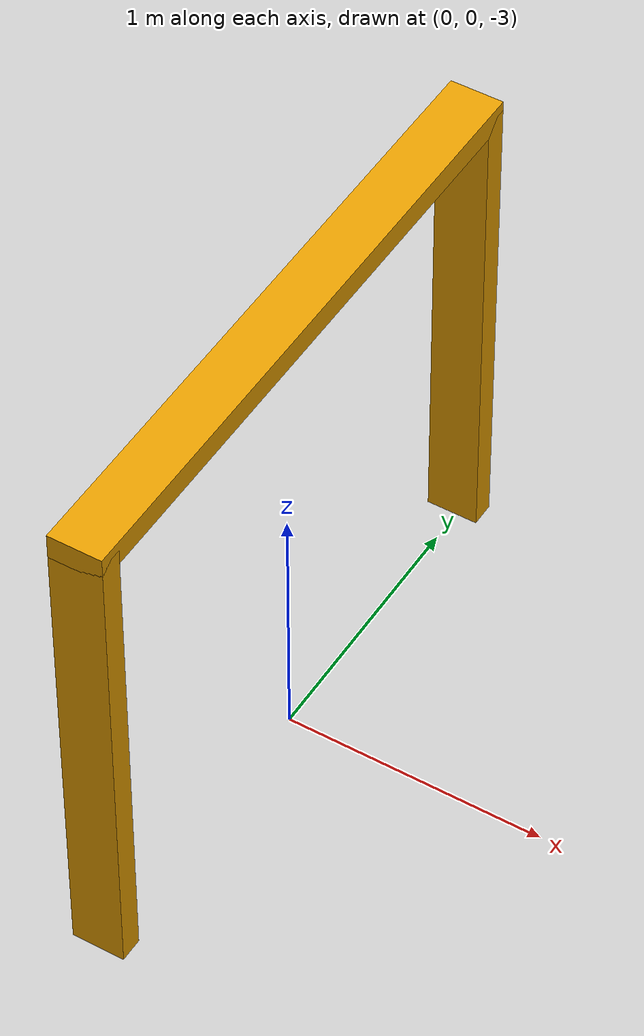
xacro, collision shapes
<?xml version="1.0"?>
<robot name="gate" xmlns:xacro="http://www.ros.org/wiki/xacro">

  <!-- Gate Dimensions -->
  <!-- Width: 2m between post centers (Y scale 0.4) -->
  <!-- Depth: Top crossbar top surface placed 1m below water surface (z=0) -->
  <xacro:property name="scale_x" value="1.0" />
  <xacro:property name="scale_y" value="0.46" />
  <xacro:property name="scale_z" value="0.48" />

  <xacro:property name="orig_v_post_x" value="0.2" />
  <xacro:property name="orig_v_post_y" value="0.2" />
  <xacro:property name="orig_v_post_z" value="4.0" />

  <xacro:property name="orig_h_post_x" value="0.2" />
  <xacro:property name="orig_h_post_y" value="5.2" />
  <xacro:property name="orig_h_post_z" value="0.2" />

  <link name="link">
    <inertial>
      <origin xyz="0.0 0.0 0.0" rpy="0.0 0.0 0.0" />
      <mass value="5000.0" />
      <inertia ixx="1.0" ixy="0.0" ixz="0.0" iyy="1.0" iyz="0.0" izz="1.0" />
    </inertial>

    <visual>
      <origin xyz="0 0 -3" rpy="0 0 0" />
      <geometry>
        <mesh filename="package://banyu_simulation/models/Gate/meshes/gate.dae"
          scale="${scale_x} ${scale_y} ${scale_z}" />
      </geometry>
    </visual>

    <!-- Right Post Collision (-Y) -->
    <collision name="right_collision">
      <origin xyz="0 -1.15 -2.0" rpy="0 0 0" />
      <geometry>
        <box size="${orig_v_post_x*scale_x} ${orig_v_post_y*scale_y} ${orig_v_post_z*scale_z}" />
      </geometry>
    </collision>

    <!-- Left Post Collision (+Y) -->
    <collision name="left_collision">
      <origin xyz="0 1.15 -2.0" rpy="0 0 0" />
      <geometry>
        <box size="${orig_v_post_x*scale_x} ${orig_v_post_y*scale_y} ${orig_v_post_z*scale_z}" />
      </geometry>
    </collision>

    <!-- Top Crossbar Collision (top surface at -1.0m, depth 1m below surface z=0) -->
    <collision name="top_collision">
      <origin xyz="0 0 -1.05" rpy="0 0 0" />
      <geometry>
        <box size="${orig_h_post_x*scale_x} ${orig_h_post_y*scale_y} ${orig_h_post_z*scale_z}" />
      </geometry>
    </collision>
  </link>

  <gazebo reference="link">
    <visual>
      <material>
        <diffuse>1.0 1.0 1.0 1.0</diffuse>
        <specular>0.2 0.2 0.2 1.0</specular>
        <!-- Matches yellow_buoy (diffuse 1 0.85 0 + emission 0.15 0.13 0). -->
        <emissive>0.15 0.13 0.0 1.0</emissive>
        <pbr>
          <metal>
            <albedo_map>model://banyu_simulation/models/Gate/materials/textures/gate.png</albedo_map>
            <!-- metalness=0: plain albedo (matte), avoids the dark full-metal look -->
            <metalness>0.0</metalness>
            <roughness>0.6</roughness>
          </metal>
        </pbr>
      </material>
    </visual>
  </gazebo>

  <gazebo>
    <static>true</static>
  </gazebo>
</robot>
